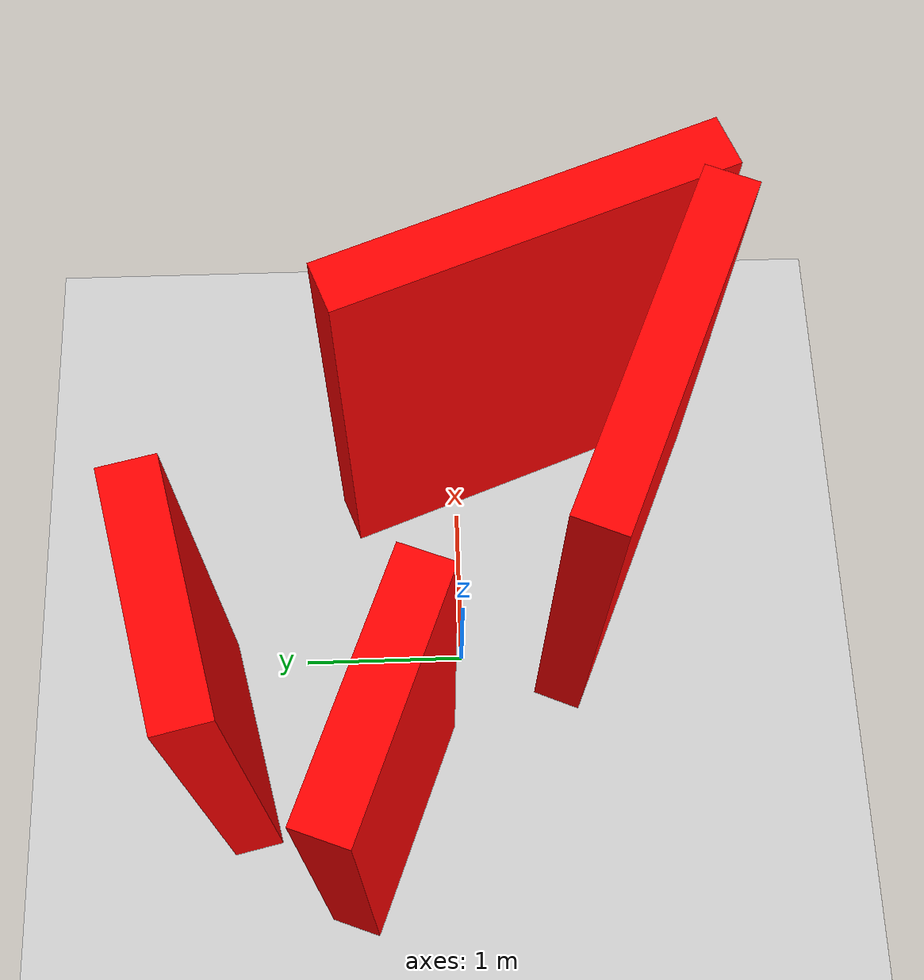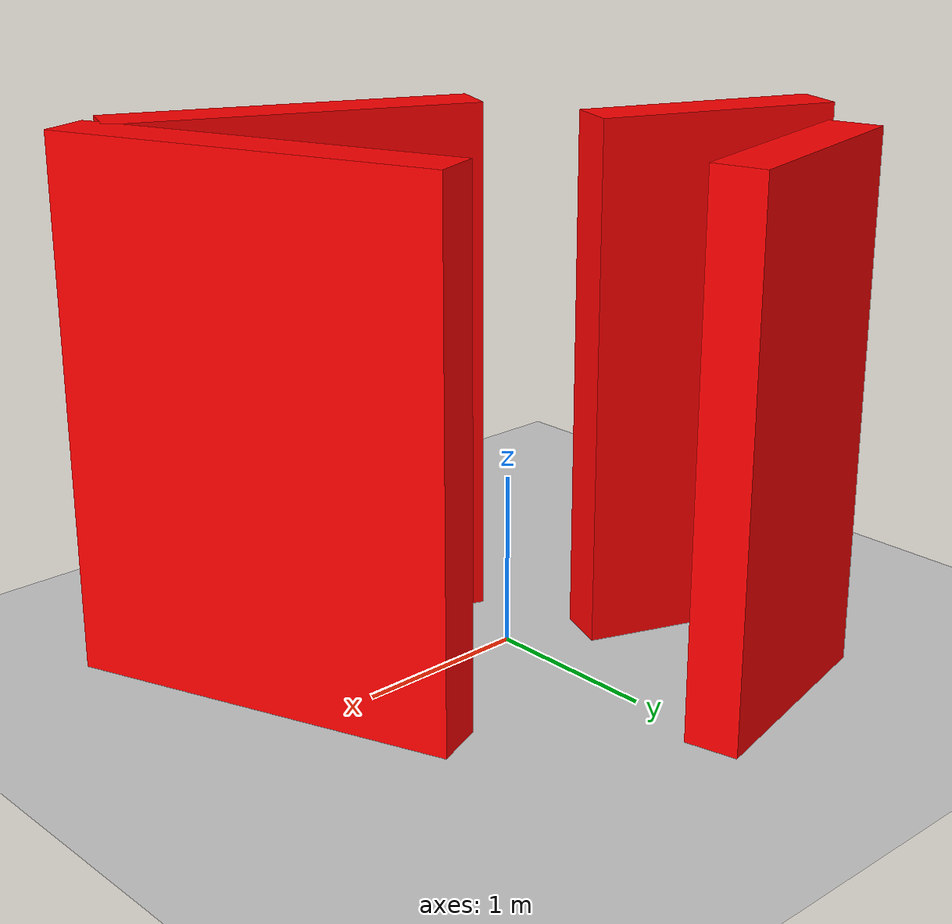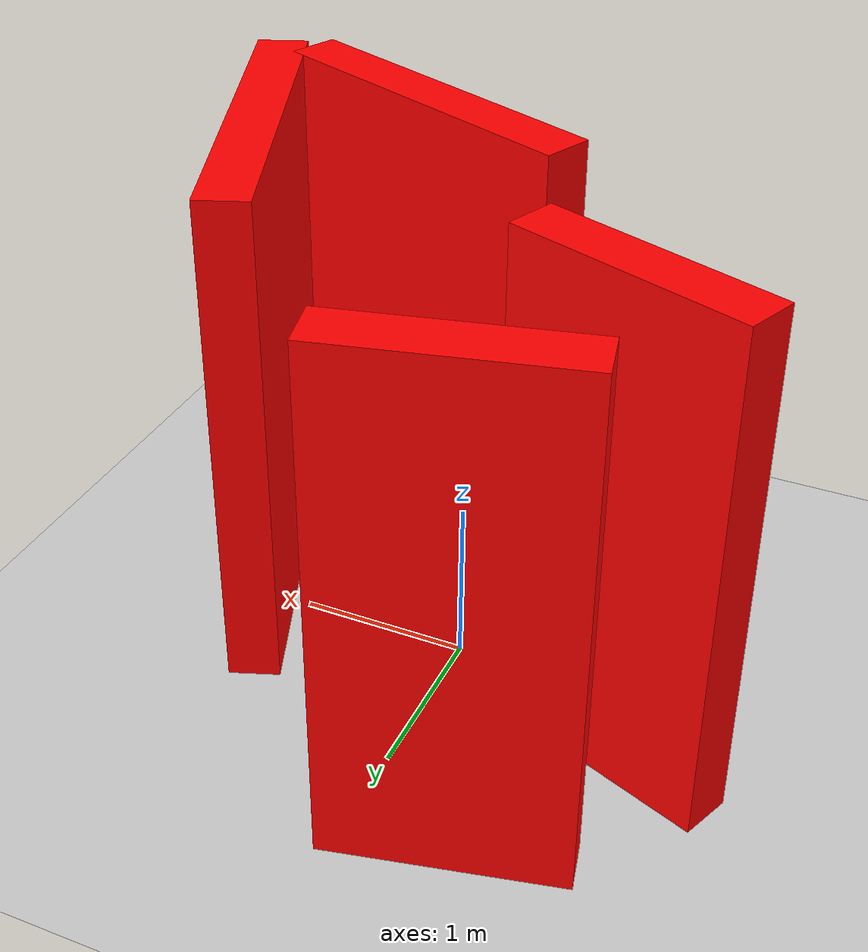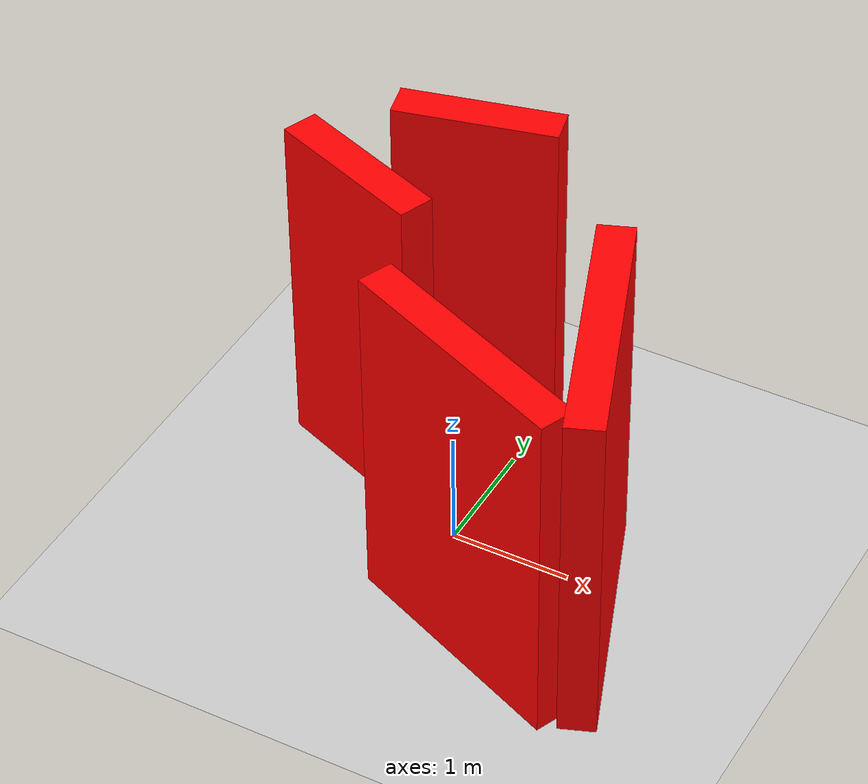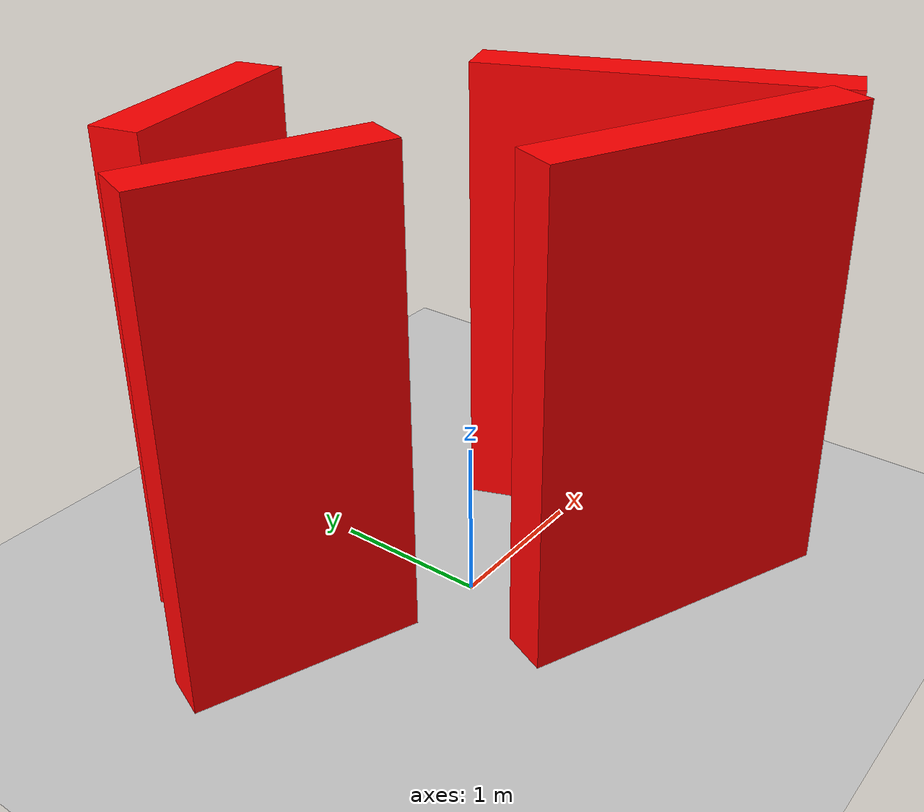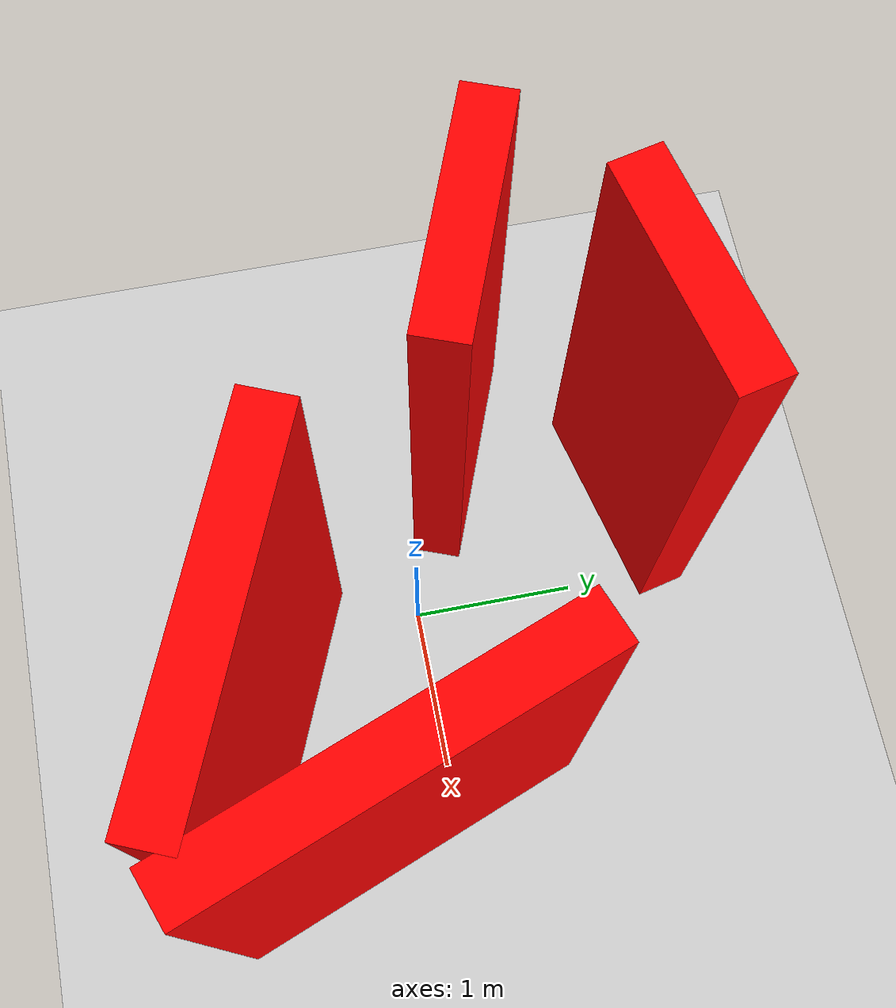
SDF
<?xml version='1.0' encoding='utf-8'?>
<sdf version="1.8">
  <world name="whatTo">
    <physics name="1ms" type="ignored">
      <max_step_size>0.001</max_step_size>
      <real_time_factor>1</real_time_factor>
      <real_time_update_rate>1000</real_time_update_rate>
    </physics>
    <plugin name="ignition::gazebo::systems::Physics" filename="ignition-gazebo-physics-system" />
    <plugin name="ignition::gazebo::systems::UserCommands" filename="ignition-gazebo-user-commands-system" />
    <plugin name="ignition::gazebo::systems::SceneBroadcaster" filename="ignition-gazebo-scene-broadcaster-system" />
    <plugin name="ignition::gazebo::systems::Contact" filename="ignition-gazebo-contact-system" />
    <gravity>0 0 -9.8</gravity>
    <magnetic_field>6e-06 2.3e-05 -4.2e-05</magnetic_field>
    <atmosphere type="adiabatic" />
    <scene>
      <ambient>0.4 0.4 0.4 1</ambient>
      <background>0.7 0.7 0.7 1</background>
      <shadows>true</shadows>
    </scene>
    <model name="ground_plane">
      <static>true</static>
      <link name="link">
        <collision name="collision">
          <geometry>
            <plane>
              <normal>0 0 1</normal>
              <size>100 100</size>
            </plane>
          </geometry>
          <surface>
            <friction>
              <ode />
            </friction>
            <bounce />
            <contact />
          </surface>
        </collision>
        <visual name="visual">
          <geometry>
            <plane>
              <normal>0 0 1</normal>
              <size>100 100</size>
            </plane>
          </geometry>
          <material>
            <ambient>0.8 0.8 0.8 1</ambient>
            <diffuse>0.8 0.8 0.8 1</diffuse>
            <specular>0.8 0.8 0.8 1</specular>
          </material>
        </visual>
        <pose>0 0 0 0 0 0</pose>
        <inertial>
          <pose>0 0 0 0 0 0</pose>
          <mass>1</mass>
          <inertia>
            <ixx>1</ixx>
            <ixy>0</ixy>
            <ixz>0</ixz>
            <iyy>1</iyy>
            <iyz>0</iyz>
            <izz>1</izz>
          </inertia>
        </inertial>
        <enable_wind>false</enable_wind>
      </link>
      <pose>0 0 0 0 0 0</pose>
      <self_collide>false</self_collide>
    </model>
    <light name="sun" type="directional">
      <pose>0 0 10 0 0 0</pose>
      <cast_shadows>true</cast_shadows>
      <intensity>1</intensity>
      <direction>-0.5 0.1 -0.9</direction>
      <diffuse>0.8 0.8 0.8 1</diffuse>
      <specular>0.2 0.2 0.2 1</specular>
      <attenuation>
        <range>1000</range>
        <linear>0.01</linear>
        <constant>0.9</constant>
        <quadratic>0.001</quadratic>
      </attenuation>
      <spot>
        <inner_angle>0</inner_angle>
        <outer_angle>0</outer_angle>
        <falloff>0</falloff>
      </spot>
    </light>
  <model name="wall_5">
            <static>true</static>
            <type>wall</type>
            <pose>0.650000 -1.000000 1.500000 0 0 -0.398522</pose>
            <link name="link">
                <collision name="collision">
                    <geometry><box><size>2.061553 0.300000 3.000000</size></box></geometry>
                </collision>
                <visual name="visual">
                    <geometry><box><size>2.061553 0.300000 3.000000</size></box></geometry>
                    <material>
                        <diffuse>1 0 0 1</diffuse>
                    </material>
                </visual>
            </link>
        </model><model name="wall_6">
            <static>true</static>
            <type>wall</type>
            <pose>1.400000 -0.350000 1.500000 0 0 1.934775</pose>
            <link name="link">
                <collision name="collision">
                    <geometry><box><size>2.247221 0.300000 3.000000</size></box></geometry>
                </collision>
                <visual name="visual">
                    <geometry><box><size>2.247221 0.300000 3.000000</size></box></geometry>
                    <material>
                        <diffuse>1 0 0 1</diffuse>
                    </material>
                </visual>
            </link>
        </model><model name="wall_7">
            <static>true</static>
            <type>wall</type>
            <pose>-0.550000 1.450000 1.500000 0 0 -2.914794</pose>
            <link name="link">
                <collision name="collision">
                    <geometry><box><size>1.334166 0.300000 3.000000</size></box></geometry>
                </collision>
                <visual name="visual">
                    <geometry><box><size>1.334166 0.300000 3.000000</size></box></geometry>
                    <material>
                        <diffuse>1 0 0 1</diffuse>
                    </material>
                </visual>
            </link>
        </model><model name="wall_8">
            <static>true</static>
            <type>wall</type>
            <pose>-1.050000 0.450000 1.500000 0 0 -0.367174</pose>
            <link name="link">
                <collision name="collision">
                    <geometry><box><size>1.392839 0.300000 3.000000</size></box></geometry>
                </collision>
                <visual name="visual">
                    <geometry><box><size>1.392839 0.300000 3.000000</size></box></geometry>
                    <material>
                        <diffuse>1 0 0 1</diffuse>
                    </material>
                </visual>
            </link>
        </model></world>
</sdf>
